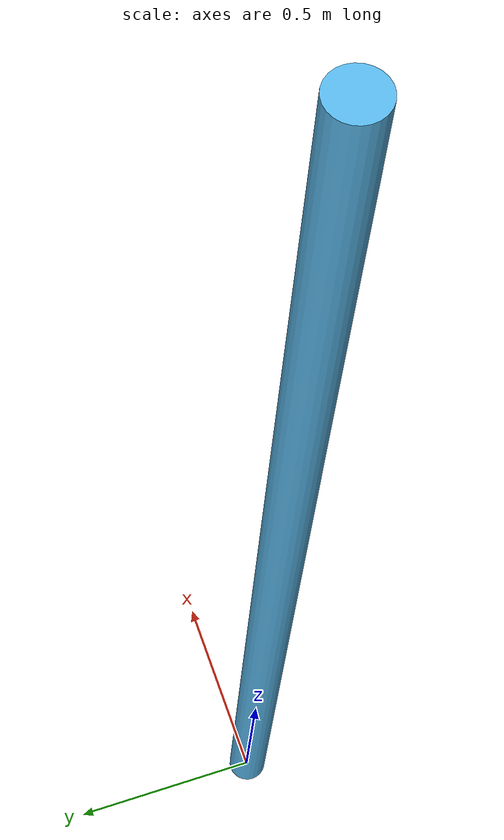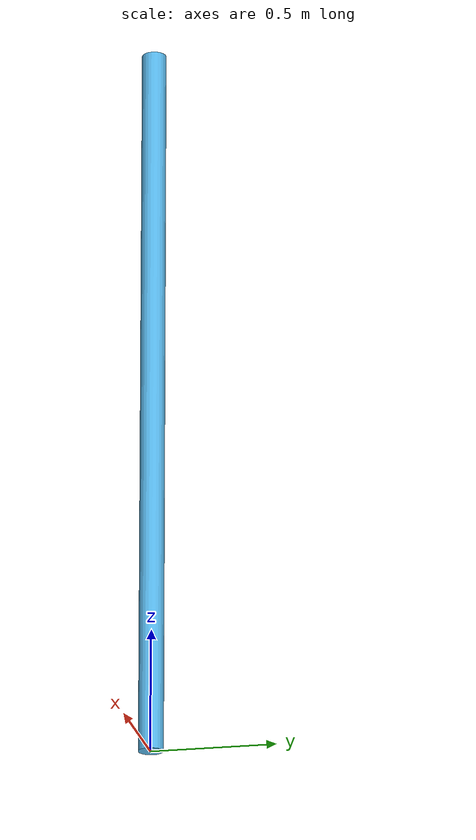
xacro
<?xml version="1.0"?>
<robot name="2019/pole" xmlns:xacro="http://www.ros.org/wiki/xacro">

<xacro:include filename="$(find aquadrone_sim_worlds)/competition_objects/common/common_shapes.urdf.xacro"/>

<gazebo>
    <static>true</static>
</gazebo>
<link name="base_link">
    <inertial>
      <origin xyz="0 0 0" />
      <mass value="1.0" />
      <inertia  ixx="1.0" ixy="0.0"  ixz="0.0"  iyy="100.0"  iyz="0.0"  izz="1.0" />
    </inertial>
</link>

<xacro:cylinder_link name="marker" parent="base_link" radius="0.05" length="3">
    <origin xyz="0 0 1.5" rpy="0 0 0"/>
    <material>Gazebo/Black</material>
</xacro:cylinder_link>

</robot>

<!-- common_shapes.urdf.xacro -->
<robot xmlns:xacro="http://www.ros.org/wiki/xacro">

<xacro:macro name="cylinder_link" params="parent name radius length *origin *material">

    <joint name="${name}_joint" type="fixed">
      <parent link="${parent}"/>
      <child link="${name}_link"/>
      <xacro:insert_block name="origin" />
    </joint>

    <link name="${name}_link">

      <visual>
        <origin xyz="0 0 0" rpy="0 0 0"/>
        <geometry>
          <cylinder radius="${radius}" length="${length}" />
        </geometry>
      </visual>
      <collision>
        <origin xyz="0 0 0" rpy="0 0 0"/>
        <geometry>
          <cylinder radius="${radius}" length="${length}" />
        </geometry>
      </collision>

    </link>

    <gazebo reference="${name}_link">
      <xacro:insert_block name="material" />
    </gazebo>

</xacro:macro>
</robot>
